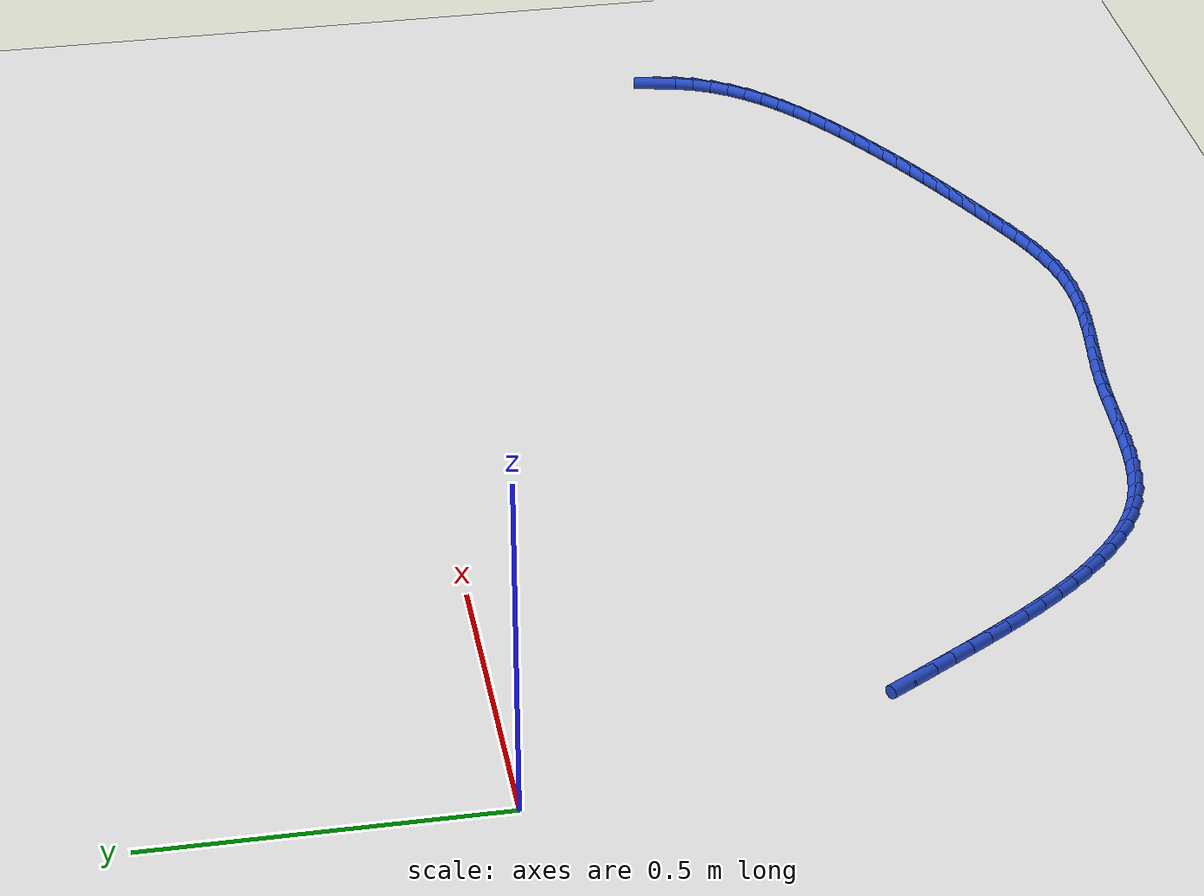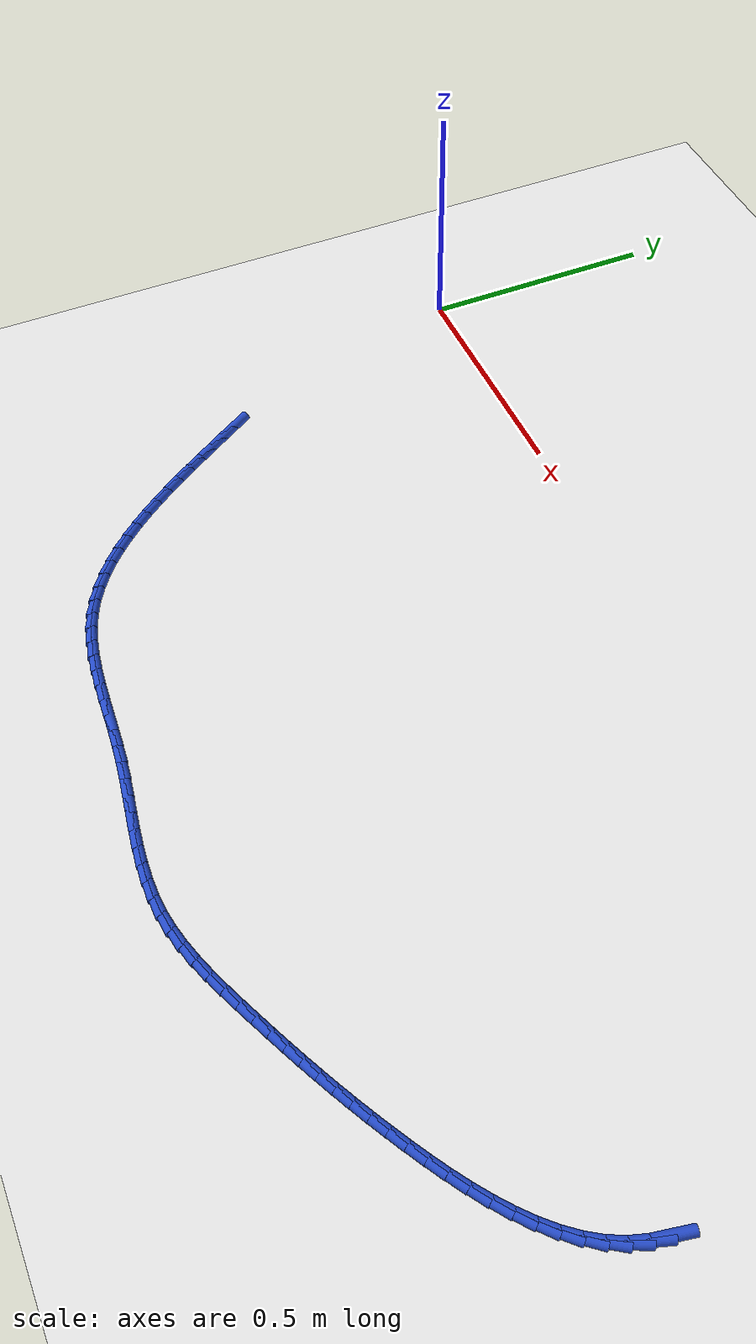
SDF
<sdf version="1.6">
 <world name="default">
  <model name="ground_plane">
   <static>1</static>
   <link name="link">
    <collision name="collision">
     <geometry><plane><normal>0 0 1</normal><size>100 100</size></plane></geometry>
     <surface><friction><ode><mu>100</mu><mu2>50</mu2></ode></friction></surface>
    </collision>
    <visual name="visual">
     <cast_shadows>0</cast_shadows>
     <geometry><plane><normal>0 0 1</normal><size>100 100</size></plane></geometry>
     <material>
      <script><uri>file://media/materials/scripts/gazebo.material</uri><name>Gazebo/WhiteGlow</name></script>
     </material>
    </visual>
   </link>
  </model>
  <model name="line">
   <link name="link_110">
    <pose>2.0095153726197292 -0.5450954577489404 0.01 0 1.57 1.364217109451487</pose>
    <collision name="collision">
     <geometry><cylinder><radius>0.01</radius><length>0.08</length></cylinder></geometry>
    </collision>
    <visual name="visual">
     <material>
      <script><name>Gazebo/Blue</name><uri>file://media/materials/scripts/gazebo.material</uri></script>
     </material>
     <geometry><cylinder><radius>0.01</radius><length>0.08</length></cylinder></geometry>
    </visual>
   </link>
   <link name="link_111">
    <pose>2.002757957972725 -0.5773398237637587 0.01 0 1.57 1.246368735629049</pose>
    <collision name="collision">
     <geometry><cylinder><radius>0.01</radius><length>0.08</length></cylinder></geometry>
    </collision>
    <visual name="visual">
     <material>
      <script><name>Gazebo/Blue</name><uri>file://media/materials/scripts/gazebo.material</uri></script>
     </material>
     <geometry><cylinder><radius>0.01</radius><length>0.08</length></cylinder></geometry>
    </visual>
   </link>
   <link name="link_112">
    <pose>1.9923694382923332 -0.6082294933528797 0.01 0 1.57 1.1151939030815845</pose>
    <collision name="collision">
     <geometry><cylinder><radius>0.01</radius><length>0.08</length></cylinder></geometry>
    </collision>
    <visual name="visual">
     <material>
      <script><name>Gazebo/Blue</name><uri>file://media/materials/scripts/gazebo.material</uri></script>
     </material>
     <geometry><cylinder><radius>0.01</radius><length>0.08</length></cylinder></geometry>
    </visual>
   </link>
   <link name="link_113">
    <pose>1.9779619788753215 -0.637633456235267 0.01 0 1.57 0.994537906151345</pose>
    <collision name="collision">
     <geometry><cylinder><radius>0.01</radius><length>0.08</length></cylinder></geometry>
    </collision>
    <visual name="visual">
     <material>
      <script><name>Gazebo/Blue</name><uri>file://media/materials/scripts/gazebo.material</uri></script>
     </material>
     <geometry><cylinder><radius>0.01</radius><length>0.08</length></cylinder></geometry>
    </visual>
   </link>
   <link name="link_114">
    <pose>1.9598029764290745 -0.6655775253782336 0.01 0 1.57 0.8909164230290175</pose>
    <collision name="collision">
     <geometry><cylinder><radius>0.01</radius><length>0.08</length></cylinder></geometry>
    </collision>
    <visual name="visual">
     <material>
      <script><name>Gazebo/Blue</name><uri>file://media/materials/scripts/gazebo.material</uri></script>
     </material>
     <geometry><cylinder><radius>0.01</radius><length>0.08</length></cylinder></geometry>
    </visual>
   </link>
   <link name="link_115">
    <pose>1.938336460024095 -0.6921297889826978 0.01 0 1.57 0.8035272216945648</pose>
    <collision name="collision">
     <geometry><cylinder><radius>0.01</radius><length>0.08</length></cylinder></geometry>
    </collision>
    <visual name="visual">
     <material>
      <script><name>Gazebo/Blue</name><uri>file://media/materials/scripts/gazebo.material</uri></script>
     </material>
     <geometry><cylinder><radius>0.01</radius><length>0.08</length></cylinder></geometry>
    </visual>
   </link>
   <link name="link_116">
    <pose>1.9140064613372383 -0.7173583358733832 0.01 0 1.57 0.7307129796790909</pose>
    <collision name="collision">
     <geometry><cylinder><radius>0.01</radius><length>0.08</length></cylinder></geometry>
    </collision>
    <visual name="visual">
     <material>
      <script><name>Gazebo/Blue</name><uri>file://media/materials/scripts/gazebo.material</uri></script>
     </material>
     <geometry><cylinder><radius>0.01</radius><length>0.08</length></cylinder></geometry>
    </visual>
   </link>
   <link name="link_117">
    <pose>1.8872570120453593 -0.7413312548750127 0.01 0 1.57 0.6705982290267248</pose>
    <collision name="collision">
     <geometry><cylinder><radius>0.01</radius><length>0.08</length></cylinder></geometry>
    </collision>
    <visual name="visual">
     <material>
      <script><name>Gazebo/Blue</name><uri>file://media/materials/scripts/gazebo.material</uri></script>
     </material>
     <geometry><cylinder><radius>0.01</radius><length>0.08</length></cylinder></geometry>
    </visual>
   </link>
   <link name="link_118">
    <pose>1.8585321438253133 -0.7641166348123091 0.01 0 1.57 0.6214372476537966</pose>
    <collision name="collision">
     <geometry><cylinder><radius>0.01</radius><length>0.08</length></cylinder></geometry>
    </collision>
    <visual name="visual">
     <material>
      <script><name>Gazebo/Blue</name><uri>file://media/materials/scripts/gazebo.material</uri></script>
     </material>
     <geometry><cylinder><radius>0.01</radius><length>0.08</length></cylinder></geometry>
    </visual>
   </link>
   <link name="link_119">
    <pose>1.8282758883539527 -0.7857825645099958 0.01 0 1.57 0.5817664177029245</pose>
    <collision name="collision">
     <geometry><cylinder><radius>0.01</radius><length>0.08</length></cylinder></geometry>
    </collision>
    <visual name="visual">
     <material>
      <script><name>Gazebo/Blue</name><uri>file://media/materials/scripts/gazebo.material</uri></script>
     </material>
     <geometry><cylinder><radius>0.01</radius><length>0.08</length></cylinder></geometry>
    </visual>
   </link>
   <link name="link_120">
    <pose>1.7969322773081342 -0.806397132792796 0.01 0 1.57 0.5504529252275693</pose>
    <collision name="collision">
     <geometry><cylinder><radius>0.01</radius><length>0.08</length></cylinder></geometry>
    </collision>
    <visual name="visual">
     <material>
      <script><name>Gazebo/Blue</name><uri>file://media/materials/scripts/gazebo.material</uri></script>
     </material>
     <geometry><cylinder><radius>0.01</radius><length>0.08</length></cylinder></geometry>
    </visual>
   </link>
   <link name="link_121">
    <pose>1.7649453423647115 -0.8260284284854331 0.01 0 1.57 0.5267013213189845</pose>
    <collision name="collision">
     <geometry><cylinder><radius>0.01</radius><length>0.08</length></cylinder></geometry>
    </collision>
    <visual name="visual">
     <material>
      <script><name>Gazebo/Blue</name><uri>file://media/materials/scripts/gazebo.material</uri></script>
     </material>
     <geometry><cylinder><radius>0.01</radius><length>0.08</length></cylinder></geometry>
    </visual>
   </link>
   <link name="link_122">
    <pose>1.7327591152005395 -0.8447445404126295 0.01 0 1.57 0.5096498995438008</pose>
    <collision name="collision">
     <geometry><cylinder><radius>0.01</radius><length>0.08</length></cylinder></geometry>
    </collision>
    <visual name="visual">
     <material>
      <script><name>Gazebo/Blue</name><uri>file://media/materials/scripts/gazebo.material</uri></script>
     </material>
     <geometry><cylinder><radius>0.01</radius><length>0.08</length></cylinder></geometry>
    </visual>
   </link>
   <link name="link_123">
    <pose>1.7007854152368604 -0.8626146146234319 0.01 0 1.57 0.49521939353342004</pose>
    <collision name="collision">
     <geometry><cylinder><radius>0.01</radius><length>0.08</length></cylinder></geometry>
    </collision>
    <visual name="visual">
     <material>
      <script><name>Gazebo/Blue</name><uri>file://media/materials/scripts/gazebo.material</uri></script>
     </material>
     <geometry><cylinder><radius>0.01</radius><length>0.08</length></cylinder></geometry>
    </visual>
   </link>
   <link name="link_124">
    <pose>1.6691186026891953 -0.8797182163563412 0.01 0 1.57 0.4812848681684894</pose>
    <collision name="collision">
     <geometry><cylinder><radius>0.01</radius><length>0.08</length></cylinder></geometry>
    </collision>
    <visual name="visual">
     <material>
      <script><name>Gazebo/Blue</name><uri>file://media/materials/scripts/gazebo.material</uri></script>
     </material>
     <geometry><cylinder><radius>0.01</radius><length>0.08</length></cylinder></geometry>
    </visual>
   </link>
   <link name="link_125">
    <pose>1.6376724012582353 -0.8961408394417409 0.01 0 1.57 0.46798710042534103</pose>
    <collision name="collision">
     <geometry><cylinder><radius>0.01</radius><length>0.08</length></cylinder></geometry>
    </collision>
    <visual name="visual">
     <material>
      <script><name>Gazebo/Blue</name><uri>file://media/materials/scripts/gazebo.material</uri></script>
     </material>
     <geometry><cylinder><radius>0.01</radius><length>0.08</length></cylinder></geometry>
    </visual>
   </link>
   <link name="link_126">
    <pose>1.606358445010438 -0.9119680462929854 0.01 0 1.57 0.4554871006882751</pose>
    <collision name="collision">
     <geometry><cylinder><radius>0.01</radius><length>0.08</length></cylinder></geometry>
    </collision>
    <visual name="visual">
     <material>
      <script><name>Gazebo/Blue</name><uri>file://media/materials/scripts/gazebo.material</uri></script>
     </material>
     <geometry><cylinder><radius>0.01</radius><length>0.08</length></cylinder></geometry>
    </visual>
   </link>
   <link name="link_127">
    <pose>1.5750883680122634 -0.9272853993234279 0.01 0 1.57 0.4439339959896391</pose>
    <collision name="collision">
     <geometry><cylinder><radius>0.01</radius><length>0.08</length></cylinder></geometry>
    </collision>
    <visual name="visual">
     <material>
      <script><name>Gazebo/Blue</name><uri>file://media/materials/scripts/gazebo.material</uri></script>
     </material>
     <geometry><cylinder><radius>0.01</radius><length>0.08</length></cylinder></geometry>
    </visual>
   </link>
   <link name="link_128">
    <pose>1.5437738043301694 -0.9421784609464214 0.01 0 1.57 0.43345954251864305</pose>
    <collision name="collision">
     <geometry><cylinder><radius>0.01</radius><length>0.08</length></cylinder></geometry>
    </collision>
    <visual name="visual">
     <material>
      <script><name>Gazebo/Blue</name><uri>file://media/materials/scripts/gazebo.material</uri></script>
     </material>
     <geometry><cylinder><radius>0.01</radius><length>0.08</length></cylinder></geometry>
    </visual>
   </link>
   <link name="link_129">
    <pose>1.5123263880306155 -0.9567327935753198 0.01 0 1.57 0.4241734759350623</pose>
    <collision name="collision">
     <geometry><cylinder><radius>0.01</radius><length>0.08</length></cylinder></geometry>
    </collision>
    <visual name="visual">
     <material>
      <script><name>Gazebo/Blue</name><uri>file://media/materials/scripts/gazebo.material</uri></script>
     </material>
     <geometry><cylinder><radius>0.01</radius><length>0.08</length></cylinder></geometry>
    </visual>
   </link>
   <link name="link_130">
    <pose>1.4806577531800604 -0.971033959623476 0.01 0 1.57 0.4161600237330404</pose>
    <collision name="collision">
     <geometry><cylinder><radius>0.01</radius><length>0.08</length></cylinder></geometry>
    </collision>
    <visual name="visual">
     <material>
      <script><name>Gazebo/Blue</name><uri>file://media/materials/scripts/gazebo.material</uri></script>
     </material>
     <geometry><cylinder><radius>0.01</radius><length>0.08</length></cylinder></geometry>
    </visual>
   </link>
   <link name="link_131">
    <pose>1.4486795338449632 -0.9851675215042441 0.01 0 1.57 0.4092347620370103</pose>
    <collision name="collision">
     <geometry><cylinder><radius>0.01</radius><length>0.08</length></cylinder></geometry>
    </collision>
    <visual name="visual">
     <material>
      <script><name>Gazebo/Blue</name><uri>file://media/materials/scripts/gazebo.material</uri></script>
     </material>
     <geometry><cylinder><radius>0.01</radius><length>0.08</length></cylinder></geometry>
    </visual>
   </link>
   <link name="link_132">
    <pose>1.4163060044031446 -0.9992086241244731 0.01 0 1.57 0.3975195999824712</pose>
    <collision name="collision">
     <geometry><cylinder><radius>0.01</radius><length>0.08</length></cylinder></geometry>
    </collision>
    <visual name="visual">
     <material>
      <script><name>Gazebo/Blue</name><uri>file://media/materials/scripts/gazebo.material</uri></script>
     </material>
     <geometry><cylinder><radius>0.01</radius><length>0.08</length></cylinder></geometry>
    </visual>
   </link>
   <link name="link_133">
    <pose>1.3835164081380351 -1.0129760736854556 0.01 0 1.57 0.3748522361181319</pose>
    <collision name="collision">
     <geometry><cylinder><radius>0.01</radius><length>0.08</length></cylinder></geometry>
    </collision>
    <visual name="visual">
     <material>
      <script><name>Gazebo/Blue</name><uri>file://media/materials/scripts/gazebo.material</uri></script>
     </material>
     <geometry><cylinder><radius>0.01</radius><length>0.08</length></cylinder></geometry>
    </visual>
   </link>
   <link name="link_134">
    <pose>1.3503574049677607 -1.026022680021327 0.01 0 1.57 0.3406264050008117</pose>
    <collision name="collision">
     <geometry><cylinder><radius>0.01</radius><length>0.08</length></cylinder></geometry>
    </collision>
    <visual name="visual">
     <material>
      <script><name>Gazebo/Blue</name><uri>file://media/materials/scripts/gazebo.material</uri></script>
     </material>
     <geometry><cylinder><radius>0.01</radius><length>0.08</length></cylinder></geometry>
    </visual>
   </link>
   <link name="link_135">
    <pose>1.316878784877533 -1.0378889030991947 0.01 0 1.57 0.29422093205110056</pose>
    <collision name="collision">
     <geometry><cylinder><radius>0.01</radius><length>0.08</length></cylinder></geometry>
    </collision>
    <visual name="visual">
     <material>
      <script><name>Gazebo/Blue</name><uri>file://media/materials/scripts/gazebo.material</uri></script>
     </material>
     <geometry><cylinder><radius>0.01</radius><length>0.08</length></cylinder></geometry>
    </visual>
   </link>
   <link name="link_136">
    <pose>1.2831303378525656 -1.0481152028861667 0.01 0 1.57 0.23483227323986364</pose>
    <collision name="collision">
     <geometry><cylinder><radius>0.01</radius><length>0.08</length></cylinder></geometry>
    </collision>
    <visual name="visual">
     <material>
      <script><name>Gazebo/Blue</name><uri>file://media/materials/scripts/gazebo.material</uri></script>
     </material>
     <geometry><cylinder><radius>0.01</radius><length>0.08</length></cylinder></geometry>
    </visual>
   </link>
   <link name="link_137">
    <pose>1.249161853878069 -1.05624203934935 0.01 0 1.57 0.1616755254640326</pose>
    <collision name="collision">
     <geometry><cylinder><radius>0.01</radius><length>0.08</length></cylinder></geometry>
    </collision>
    <visual name="visual">
     <material>
      <script><name>Gazebo/Blue</name><uri>file://media/materials/scripts/gazebo.material</uri></script>
     </material>
     <geometry><cylinder><radius>0.01</radius><length>0.08</length></cylinder></geometry>
    </visual>
   </link>
   <link name="link_138">
    <pose>1.2150231109714105 -1.0618100372187793 0.01 0 1.57 0.08005470424715849</pose>
    <collision name="collision">
     <geometry><cylinder><radius>0.01</radius><length>0.08</length></cylinder></geometry>
    </collision>
    <visual name="visual">
     <material>
      <script><name>Gazebo/Blue</name><uri>file://media/materials/scripts/gazebo.material</uri></script>
     </material>
     <geometry><cylinder><radius>0.01</radius><length>0.08</length></cylinder></geometry>
    </visual>
   </link>
   <link name="link_139">
    <pose>1.1807493694805304 -1.0645596879149524 0.01 0 1.57 0.0075514438229370906</pose>
    <collision name="collision">
     <geometry><cylinder><radius>0.01</radius><length>0.08</length></cylinder></geometry>
    </collision>
    <visual name="visual">
     <material>
      <script><name>Gazebo/Blue</name><uri>file://media/materials/scripts/gazebo.material</uri></script>
     </material>
     <geometry><cylinder><radius>0.01</radius><length>0.08</length></cylinder></geometry>
    </visual>
   </link>
   <link name="link_140">
    <pose>1.1463331719292889 -1.0648195848375255 0.01 0 1.57 -0.05183181816526726</pose>
    <collision name="collision">
     <geometry><cylinder><radius>0.01</radius><length>0.08</length></cylinder></geometry>
    </collision>
    <visual name="visual">
     <material>
      <script><name>Gazebo/Blue</name><uri>file://media/materials/scripts/gazebo.material</uri></script>
     </material>
     <geometry><cylinder><radius>0.01</radius><length>0.08</length></cylinder></geometry>
    </visual>
   </link>
   <link name="link_141">
    <pose>1.111759243139245 -1.0630259487359945 0.01 0 1.57 -0.09785193395842784</pose>
    <collision name="collision">
     <geometry><cylinder><radius>0.01</radius><length>0.08</length></cylinder></geometry>
    </collision>
    <visual name="visual">
     <material>
      <script><name>Gazebo/Blue</name><uri>file://media/materials/scripts/gazebo.material</uri></script>
     </material>
     <geometry><cylinder><radius>0.01</radius><length>0.08</length></cylinder></geometry>
    </visual>
   </link>
   <link name="link_142">
    <pose>1.0770123079319567 -1.059615000359855 0.01 0 1.57 -0.13069517247329204</pose>
    <collision name="collision">
     <geometry><cylinder><radius>0.01</radius><length>0.08</length></cylinder></geometry>
    </collision>
    <visual name="visual">
     <material>
      <script><name>Gazebo/Blue</name><uri>file://media/materials/scripts/gazebo.material</uri></script>
     </material>
     <geometry><cylinder><radius>0.01</radius><length>0.08</length></cylinder></geometry>
    </visual>
   </link>
   <link name="link_143">
    <pose>1.042077091128983 -1.0550229604586043 0.01 0 1.57 -0.15072900811061188</pose>
    <collision name="collision">
     <geometry><cylinder><radius>0.01</radius><length>0.08</length></cylinder></geometry>
    </collision>
    <visual name="visual">
     <material>
      <script><name>Gazebo/Blue</name><uri>file://media/materials/scripts/gazebo.material</uri></script>
     </material>
     <geometry><cylinder><radius>0.01</radius><length>0.08</length></cylinder></geometry>
    </visual>
   </link>
   <link name="link_144">
    <pose>1.006938317551883 -1.0496860497817386 0.01 0 1.57 -0.15833380897125382</pose>
    <collision name="collision">
     <geometry><cylinder><radius>0.01</radius><length>0.08</length></cylinder></geometry>
    </collision>
    <visual name="visual">
     <material>
      <script><name>Gazebo/Blue</name><uri>file://media/materials/scripts/gazebo.material</uri></script>
     </material>
     <geometry><cylinder><radius>0.01</radius><length>0.08</length></cylinder></geometry>
    </visual>
   </link>
   <link name="link_145">
    <pose>0.9715807120222146 -1.044040489078753 0.01 0 1.57 -0.15381126917494872</pose>
    <collision name="collision">
     <geometry><cylinder><radius>0.01</radius><length>0.08</length></cylinder></geometry>
    </collision>
    <visual name="visual">
     <material>
      <script><name>Gazebo/Blue</name><uri>file://media/materials/scripts/gazebo.material</uri></script>
     </material>
     <geometry><cylinder><radius>0.01</radius><length>0.08</length></cylinder></geometry>
    </visual>
   </link>
   <link name="link_146">
    <pose>0.9359889993615361 -1.0385224990991448 0.01 0 1.57 -0.13735636910392107</pose>
    <collision name="collision">
     <geometry><cylinder><radius>0.01</radius><length>0.08</length></cylinder></geometry>
    </collision>
    <visual name="visual">
     <material>
      <script><name>Gazebo/Blue</name><uri>file://media/materials/scripts/gazebo.material</uri></script>
     </material>
     <geometry><cylinder><radius>0.01</radius><length>0.08</length></cylinder></geometry>
    </visual>
   </link>
   <link name="link_147">
    <pose>0.9001479043914066 -1.0335683005924103 0.01 0 1.57 -0.11000451366595813</pose>
    <collision name="collision">
     <geometry><cylinder><radius>0.01</radius><length>0.08</length></cylinder></geometry>
    </collision>
    <visual name="visual">
     <material>
      <script><name>Gazebo/Blue</name><uri>file://media/materials/scripts/gazebo.material</uri></script>
     </material>
     <geometry><cylinder><radius>0.01</radius><length>0.08</length></cylinder></geometry>
    </visual>
   </link>
   <link name="link_148">
    <pose>0.8640491754189721 -1.0295811817794414 0.01 0 1.57 -0.08498080411535902</pose>
    <collision name="collision">
     <geometry><cylinder><radius>0.01</radius><length>0.08</length></cylinder></geometry>
    </collision>
    <visual name="visual">
     <material>
      <script><name>Gazebo/Blue</name><uri>file://media/materials/scripts/gazebo.material</uri></script>
     </material>
     <geometry><cylinder><radius>0.01</radius><length>0.08</length></cylinder></geometry>
    </visual>
   </link>
   <link name="link_149">
    <pose>0.8277853135269173 -1.0264920096565389 0.01 0 1.57 -0.07196093728630311</pose>
    <collision name="collision">
     <geometry><cylinder><radius>0.01</radius><length>0.08</length></cylinder></geometry>
    </collision>
    <visual name="visual">
     <material>
      <script><name>Gazebo/Blue</name><uri>file://media/materials/scripts/gazebo.material</uri></script>
     </material>
     <geometry><cylinder><radius>0.01</radius><length>0.08</length></cylinder></geometry>
    </visual>
   </link>
   <link name="link_150">
    <pose>0.7915242183521644 -1.0238781137900366 0.01 0 1.57 -0.07108856023004198</pose>
    <collision name="collision">
     <geometry><cylinder><radius>0.01</radius><length>0.08</length></cylinder></geometry>
    </collision>
    <visual name="visual">
     <material>
      <script><name>Gazebo/Blue</name><uri>file://media/materials/scripts/gazebo.material</uri></script>
     </material>
     <geometry><cylinder><radius>0.01</radius><length>0.08</length></cylinder></geometry>
    </visual>
   </link>
   <link name="link_151">
    <pose>0.7554356082208785 -1.0213082960665651 0.01 0 1.57 -0.08253195663054512</pose>
    <collision name="collision">
     <geometry><cylinder><radius>0.01</radius><length>0.08</length></cylinder></geometry>
    </collision>
    <visual name="visual">
     <material>
      <script><name>Gazebo/Blue</name><uri>file://media/materials/scripts/gazebo.material</uri></script>
     </material>
     <geometry><cylinder><radius>0.01</radius><length>0.08</length></cylinder></geometry>
    </visual>
   </link>
   <link name="link_152">
    <pose>0.7196892014592253 -1.0183513583727541 0.01 0 1.57 -0.1067393870545366</pose>
    <collision name="collision">
     <geometry><cylinder><radius>0.01</radius><length>0.08</length></cylinder></geometry>
    </collision>
    <visual name="visual">
     <material>
      <script><name>Gazebo/Blue</name><uri>file://media/materials/scripts/gazebo.material</uri></script>
     </material>
     <geometry><cylinder><radius>0.01</radius><length>0.08</length></cylinder></geometry>
    </visual>
   </link>
   <link name="link_153">
    <pose>0.6844547163933681 -1.0145761025952331 0.01 0 1.57 -0.14441050468426353</pose>
    <collision name="collision">
     <geometry><cylinder><radius>0.01</radius><length>0.08</length></cylinder></geometry>
    </collision>
    <visual name="visual">
     <material>
      <script><name>Gazebo/Blue</name><uri>file://media/materials/scripts/gazebo.material</uri></script>
     </material>
     <geometry><cylinder><radius>0.01</radius><length>0.08</length></cylinder></geometry>
    </visual>
   </link>
   <link name="link_154">
    <pose>0.649901871349473 -1.0095513306206332 0.01 0 1.57 -0.19640216727642776</pose>
    <collision name="collision">
     <geometry><cylinder><radius>0.01</radius><length>0.08</length></cylinder></geometry>
    </collision>
    <visual name="visual">
     <material>
      <script><name>Gazebo/Blue</name><uri>file://media/materials/scripts/gazebo.material</uri></script>
     </material>
     <geometry><cylinder><radius>0.01</radius><length>0.08</length></cylinder></geometry>
    </visual>
   </link>
   <link name="link_155">
    <pose>0.6162003846537046 -1.0028458443355837 0.01 0 1.57 -0.26353180601248954</pose>
    <collision name="collision">
     <geometry><cylinder><radius>0.01</radius><length>0.08</length></cylinder></geometry>
    </collision>
    <visual name="visual">
     <material>
      <script><name>Gazebo/Blue</name><uri>file://media/materials/scripts/gazebo.material</uri></script>
     </material>
     <geometry><cylinder><radius>0.01</radius><length>0.08</length></cylinder></geometry>
    </visual>
   </link>
   <link name="link_156">
    <pose>0.5835199746322282 -0.994028445626715 0.01 0 1.57 -0.34623597172164033</pose>
    <collision name="collision">
     <geometry><cylinder><radius>0.01</radius><length>0.08</length></cylinder></geometry>
    </collision>
    <visual name="visual">
     <material>
      <script><name>Gazebo/Blue</name><uri>file://media/materials/scripts/gazebo.material</uri></script>
     </material>
     <geometry><cylinder><radius>0.01</radius><length>0.08</length></cylinder></geometry>
    </visual>
   </link>
   <link name="link_157">
    <pose>0.5520303464521162 -0.9826679715704042 0.01 0 1.57 -0.4397904270064813</pose>
    <collision name="collision">
     <geometry><cylinder><radius>0.01</radius><length>0.08</length></cylinder></geometry>
    </collision>
    <visual name="visual">
     <material>
      <script><name>Gazebo/Blue</name><uri>file://media/materials/scripts/gazebo.material</uri></script>
     </material>
     <geometry><cylinder><radius>0.01</radius><length>0.08</length></cylinder></geometry>
    </visual>
   </link>
   <link name="link_158">
    <pose>0.5218508945327196 -0.9684677991110093 0.01 0 1.57 -0.5288769767481155</pose>
    <collision name="collision">
     <geometry><cylinder><radius>0.01</radius><length>0.08</length></cylinder></geometry>
    </collision>
    <visual name="visual">
     <material>
      <script><name>Gazebo/Blue</name><uri>file://media/materials/scripts/gazebo.material</uri></script>
     </material>
     <geometry><cylinder><radius>0.01</radius><length>0.08</length></cylinder></geometry>
    </visual>
   </link>
   <link name="link_159">
    <pose>0.4929368956250554 -0.9515701849637181 0.01 0 1.57 -0.6096305506125468</pose>
    <collision name="collision">
     <geometry><cylinder><radius>0.01</radius><length>0.08</length></cylinder></geometry>
    </collision>
    <visual name="visual">
     <material>
      <script><name>Gazebo/Blue</name><uri>file://media/materials/scripts/gazebo.material</uri></script>
     </material>
     <geometry><cylinder><radius>0.01</radius><length>0.08</length></cylinder></geometry>
    </visual>
   </link>
   <link name="link_160">
    <pose>0.4652102166726097 -0.9322067295982385 0.01 0 1.57 -0.6816595692955989</pose>
    <collision name="collision">
     <geometry><cylinder><radius>0.01</radius><length>0.08</length></cylinder></geometry>
    </collision>
    <visual name="visual">
     <material>
      <script><name>Gazebo/Blue</name><uri>file://media/materials/scripts/gazebo.material</uri></script>
     </material>
     <geometry><cylinder><radius>0.01</radius><length>0.08</length></cylinder></geometry>
    </visual>
   </link>
   <link name="link_161">
    <pose>0.4385927246188701 -0.9106090334842801 0.01 0 1.57 -0.7450413097685902</pose>
    <collision name="collision">
     <geometry><cylinder><radius>0.01</radius><length>0.08</length></cylinder></geometry>
    </collision>
    <visual name="visual">
     <material>
      <script><name>Gazebo/Blue</name><uri>file://media/materials/scripts/gazebo.material</uri></script>
     </material>
     <geometry><cylinder><radius>0.01</radius><length>0.08</length></cylinder></geometry>
    </visual>
   </link>
   <link name="link_162">
    <pose>0.4130062864073235 -0.8870086970915523 0.01 0 1.57 -0.8001528239449774</pose>
    <collision name="collision">
     <geometry><cylinder><radius>0.01</radius><length>0.08</length></cylinder></geometry>
    </collision>
    <visual name="visual">
     <material>
      <script><name>Gazebo/Blue</name><uri>file://media/materials/scripts/gazebo.material</uri></script>
     </material>
     <geometry><cylinder><radius>0.01</radius><length>0.08</length></cylinder></geometry>
    </visual>
   </link>
   <link name="link_163">
    <pose>0.3883727689814568 -0.8616373208897633 0.01 0 1.57 -0.8475267879506176</pose>
    <collision name="collision">
     <geometry><cylinder><radius>0.01</radius><length>0.08</length></cylinder></geometry>
    </collision>
    <visual name="visual">
     <material>
      <script><name>Gazebo/Blue</name><uri>file://media/materials/scripts/gazebo.material</uri></script>
     </material>
     <geometry><cylinder><radius>0.01</radius><length>0.08</length></cylinder></geometry>
    </visual>
   </link>
   <link name="link_164">
    <pose>0.3646140392847571 -0.8347265053486228 0.01 0 1.57 -0.8877455199908997</pose>
    <collision name="collision">
     <geometry><cylinder><radius>0.01</radius><length>0.08</length></cylinder></geometry>
    </collision>
    <visual name="visual">
     <material>
      <script><name>Gazebo/Blue</name><uri>file://media/materials/scripts/gazebo.material</uri></script>
     </material>
     <geometry><cylinder><radius>0.01</radius><length>0.08</length></cylinder></geometry>
    </visual>
   </link>
   <link name="link_165">
    <pose>0.3416519642607113 -0.8065078509378397 0.01 0 1.57 -0.9213710100630126</pose>
    <collision name="collision">
     <geometry><cylinder><radius>0.01</radius><length>0.08</length></cylinder></geometry>
    </collision>
    <visual name="visual">
     <material>
      <script><name>Gazebo/Blue</name><uri>file://media/materials/scripts/gazebo.material</uri></script>
     </material>
     <geometry><cylinder><radius>0.01</radius><length>0.08</length></cylinder></geometry>
    </visual>
   </link>
   <link name="link_166">
    <pose>0.319408410852807 -0.777212958127124 0.01 0 1.57 -0.9489026024812739</pose>
    <collision name="collision">
     <geometry><cylinder><radius>0.01</radius><length>0.08</length></cylinder></geometry>
    </collision>
    <visual name="visual">
     <material>
      <script><name>Gazebo/Blue</name><uri>file://media/materials/scripts/gazebo.material</uri></script>
     </material>
     <geometry><cylinder><radius>0.01</radius><length>0.08</length></cylinder></geometry>
    </visual>
   </link>
   <link name="link_167">
    <pose>0.2978052460045301 -0.7470734273861829 0.01 0 1.57 -0.9707532349165938</pose>
    <collision name="collision">
     <geometry><cylinder><radius>0.01</radius><length>0.08</length></cylinder></geometry>
    </collision>
    <visual name="visual">
     <material>
      <script><name>Gazebo/Blue</name><uri>file://media/materials/scripts/gazebo.material</uri></script>
     </material>
     <geometry><cylinder><radius>0.01</radius><length>0.08</length></cylinder></geometry>
    </visual>
   </link>
   <link name="link_168">
    <pose>0.27676433665936817 -0.7163208591847263 0.01 0 1.57 -0.9872366711549208</pose>
    <collision name="collision">
     <geometry><cylinder><radius>0.01</radius><length>0.08</length></cylinder></geometry>
    </collision>
    <visual name="visual">
     <material>
      <script><name>Gazebo/Blue</name><uri>file://media/materials/scripts/gazebo.material</uri></script>
     </material>
     <geometry><cylinder><radius>0.01</radius><length>0.08</length></cylinder></geometry>
    </visual>
   </link>
   <link name="link_169">
    <pose>0.25620754976080795 -0.6851868539924636 0.01 0 1.57 -0.9985601521065698</pose>
    <collision name="collision">
     <geometry><cylinder><radius>0.01</radius><length>0.08</length></cylinder></geometry>
    </collision>
    <visual name="visual">
     <material>
      <script><name>Gazebo/Blue</name><uri>file://media/materials/scripts/gazebo.material</uri></script>
     </material>
     <geometry><cylinder><radius>0.01</radius><length>0.08</length></cylinder></geometry>
    </visual>
   </link>
   <link name="link_170">
    <pose>0.2360567522523367 -0.6539030122791035 0.01 0 1.57 -1.0048185694428855</pose>
    <collision name="collision">
     <geometry><cylinder><radius>0.01</radius><length>0.08</length></cylinder></geometry>
    </collision>
    <visual name="visual">
     <material>
      <script><name>Gazebo/Blue</name><uri>file://media/materials/scripts/gazebo.material</uri></script>
     </material>
     <geometry><cylinder><radius>0.01</radius><length>0.08</length></cylinder></geometry>
    </visual>
   </link>
   <link name="link_171">
    <pose>0.2162338110774413 -0.6227009345143553 0.01 0 1.57 -1.0066113684778275</pose>
    <collision name="collision">
     <geometry><cylinder><radius>0.01</radius><length>0.08</length></cylinder></geometry>
    </collision>
    <visual name="visual">
     <material>
      <script><name>Gazebo/Blue</name><uri>file://media/materials/scripts/gazebo.material</uri></script>
     </material>
     <geometry><cylinder><radius>0.01</radius><length>0.08</length></cylinder></geometry>
    </visual>
   </link>
   <link name="link_172">
    <pose>0.1966735369344804 -0.591790008437976 0.01 0 1.57 -1.0097680368460464</pose>
    <collision name="collision">
     <geometry><cylinder><radius>0.01</radius><length>0.08</length></cylinder></geometry>
    </collision>
    <visual name="visual">
     <material>
      <script><name>Gazebo/Blue</name><uri>file://media/materials/scripts/gazebo.material</uri></script>
     </material>
     <geometry><cylinder><radius>0.01</radius><length>0.08</length></cylinder></geometry>
    </visual>
   </link>
   <link name="link_173">
    <pose>0.1774326769068039 -0.5611703672095724 0.01 0 1.57 -1.0176291075126191</pose>
    <collision name="collision">
     <geometry><cylinder><radius>0.01</radius><length>0.08</length></cylinder></geometry>
    </collision>
    <visual name="visual">
     <material>
      <script><name>Gazebo/Blue</name><uri>file://media/materials/scripts/gazebo.material</uri></script>
     </material>
     <geometry><cylinder><radius>0.01</radius><length>0.08</length></cylinder></geometry>
    </visual>
   </link>
  </model>
 </world>
</sdf>
